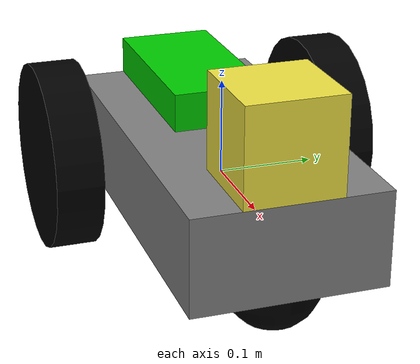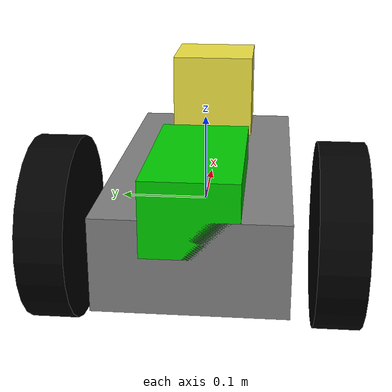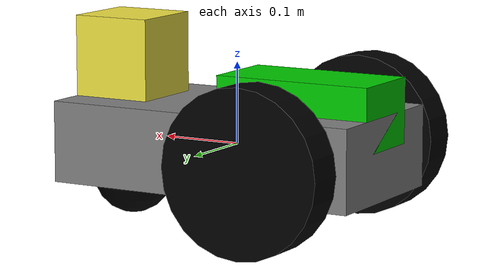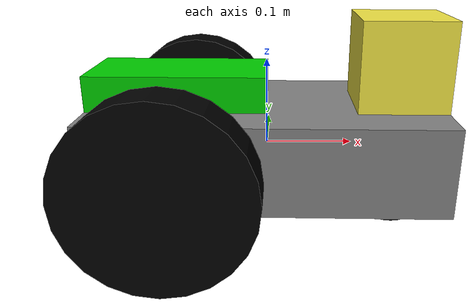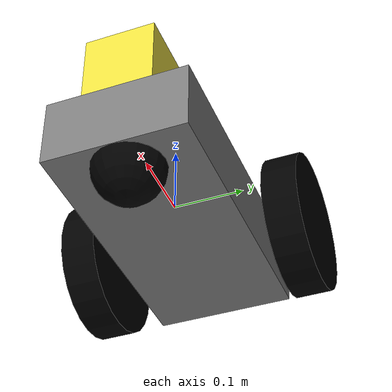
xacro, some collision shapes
<?xml version='1.0'?>

<robot name="st" xmlns:xacro="http://www.ros.org/wiki/xacro">

  <xacro:include filename="$(find mybot)/urdf/st.gazebo"/>
  <link name='chassis'>
    <pose>0 0 0.1 0 0 0</pose>

    <inertial>
      <mass value="5.0"/>
      <origin xyz="0.0 0 0.1" rpy=" 0 0 0"/>
      <inertia
          ixx="0.1" ixy="0" ixz="0"
          iyy="0.1" iyz="0"
          izz="0.1"
      />
    </inertial>

    <collision name='collision'>
      <geometry>
        <box size=".4 .2 .1"/>
      </geometry>
    </collision>

    <visual name='chassis_visual'>
      <origin xyz="0 0 0" rpy=" 0 0 0"/>
      <geometry>
        <box size=".4 .2 .1"/>
      </geometry>
        <material name="grey">
    <color rgba="0.5 0.5 0.5 1.0"/>
  </material>
    </visual>

    <visual name='chassis_visual_top'>
      <origin xyz="-0.1 0 0.05" rpy=" 0 0 0"/>
      <geometry>
        <box size=".2 .1 .08"/>
      </geometry>
        <material name="green">
    <color rgba="0.0 0.8 0.0 1.0"/>
  </material>
    </visual>

    <collision name='caster_front_collision'>
      <origin xyz="0.15 0 -0.05" rpy=" 0 0 0"/>
      <geometry>
        <sphere radius="0.05"/>
      </geometry>
    </collision>

    <visual name='caster_front_visual'>
      <origin xyz="0.15 0 -0.05" rpy=" 0 0 0"/>
      <geometry>
        <sphere radius="0.05"/>
      </geometry>
        <material name="black">
    <color rgba="0.0 0.0 0.0 1.0"/>
  </material>
    </visual>

  </link>

  <link name="left_wheel">
    <!--origin xyz="0.1 0.13 0.1" rpy="0 1.5707 1.5707"/-->
    <collision name="collision">
      <origin xyz="0 0 0" rpy="0 1.5707 1.5707"/>
      <geometry>
        <cylinder radius="0.1" length="0.05"/>
      </geometry>
    </collision>
    <visual name="left_wheel_visual">
      <origin xyz="0 0 0" rpy="0 1.5707 1.5707"/>
      <geometry>
        <cylinder radius="0.1" length="0.05"/>
      </geometry>
    <material name="black">
        <color rgba="0.0 0.0 0.0 1.0"/>
    </material>
    </visual>
    <inertial>
      <origin xyz="0 0 0" rpy="0 1.5707 1.5707"/>
      <mass value="5"/>
      <inertia
        ixx=".1" ixy="0.0" ixz="0.0"
        iyy=".1" iyz="0.0"
        izz=".1"/>
    </inertial>
  </link>

  <link name="right_wheel">
    <!--origin xyz="0.1 -0.13 0.1" rpy="0 1.5707 1.5707"/-->
    <collision name="collision">
      <origin xyz="0 0 0" rpy="0 1.5707 1.5707"/>
      <geometry>
        <cylinder radius="0.1" length="0.05"/>
      </geometry>
    </collision>
    <visual name="right_wheel_visual">
      <origin xyz="0 0 0" rpy="0 1.5707 1.5707"/>
      <geometry>
        <cylinder radius="0.1" length="0.05"/>
      </geometry>
        <material name="black">
            <color rgba="0.0 0.0 0.0 1.0"/>
        </material>
    </visual>
    <inertial>
      <origin xyz="0 0 0" rpy="0 1.5707 1.5707"/>
      <mass value="5"/>
      <inertia
        ixx=".1" ixy="0.0" ixz="0.0"
        iyy=".1" iyz="0.0"
        izz=".1"/>
    </inertial>
  </link>

  <joint type="continuous" name="left_wheel_hinge">
    <origin xyz="-0.1 0.15 0" rpy="0 0 0"/>
    <!--origin xyz="0.1 0.13 0" rpy="0 1.5707 1.5707"/-->
    <child link="left_wheel"/>
    <parent link="chassis"/>
    <axis xyz="0 1 0" rpy="0 0 0"/>
    <joint_properties damping="0.0" friction="0.0"/>
  </joint>

  <joint type="continuous" name="right_wheel_hinge">
    <origin xyz="-0.1 -0.15 0" rpy="0 0 0"/>
    <!--origin xyz="0.1 -0.13 0" rpy="0 1.5707 1.5707"/-->
    <child link="right_wheel"/>
    <parent link="chassis"/>
    <axis xyz="0 1 0" rpy="0 0 0"/>
    <joint_properties damping="0.0" friction="0.0"/>
  </joint>

  <!-- Hokuyo Laser -->
  <link name="hokuyo_link">
    <collision>
      <origin xyz="0 0 0" rpy="0 0 0"/>
      <geometry>
    <box size="0.1 0.1 0.1"/>
      </geometry>
    </collision>

    <visual>
      <origin xyz="0 0 0" rpy="0 0 0"/>
      <geometry>
        <mesh filename="package://mybot/meshes/hokuyo.dae"/>
      </geometry>
    </visual>

    <inertial>
      <mass value="1e-5" />
      <origin xyz="0 0 0" rpy="0 0 0"/>
      <inertia ixx="1e-6" ixy="0" ixz="0" iyy="1e-6" iyz="0" izz="1e-6" />
    </inertial>
  </link>

  <joint name="hokuyo_joint" type="fixed">
    <axis xyz="0 1 0" />
    <origin xyz="0.15 0 0.1" rpy="0 0 0"/>
    <parent link="chassis"/>
    <child link="hokuyo_link"/>
  </joint>

</robot>
